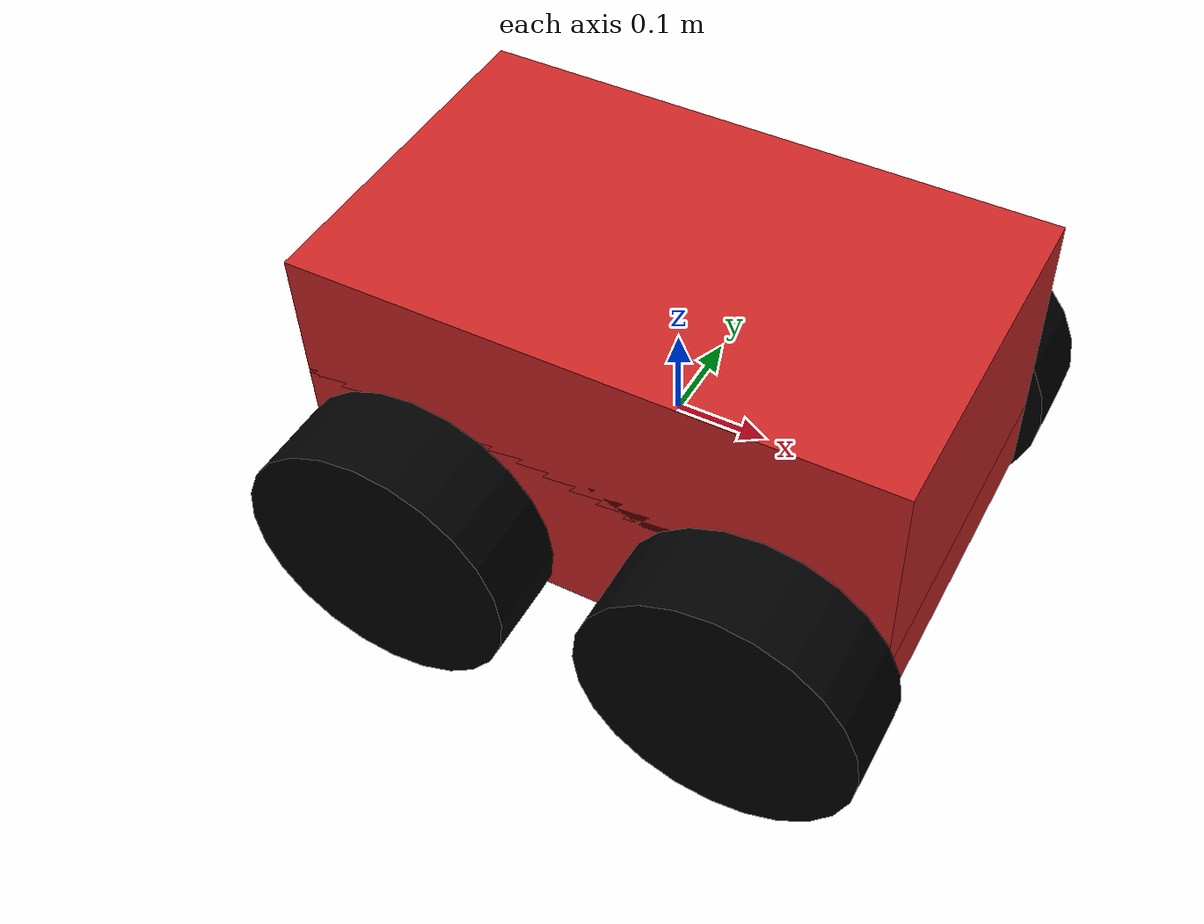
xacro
<?xml version="1.0"?>
<robot xmlns:xacro="http://ros.org/wiki/xacro" name="atrv">
	<xacro:property name="width" value=".39" />
	<xacro:property name="len" value=".64" />
	<xacro:property name="wradius" value=".15"/>
	<xacro:property name="wthick" value=".1"/>
	<link name="base_link">
		<visual>
			<geometry>
				<box size="${len} ${width} .22"/>
			</geometry>
		</visual>
		<collision>
			<geometry>
				<box size="${len} ${width} .22"/>
			</geometry>
		</collision>
		<inertial>
			<!-- Center of mass -->
			<mass value="16.523"/>
			 <!-- Moments of inertia: ( chassis without wheels ) -->
			 <inertia
			 	ixx="0.3136" ixy="-0.0008" ixz="0.0164"
			 	iyy="0.3922" iyz="-0.0009"
			 	izz="0.4485"/>
		</inertial>
	</link>

	<link name="top_cover">
		<visual>
			<geometry>
				<box size="${len} ${width} .25"/>
			</geometry>
		</visual>
		<collision>
			<geometry>
				<box size="${len} ${width} .25"/>
			</geometry>
		</collision>
	</link>

	<joint name="base_to_top_cover" type="fixed">
		<parent link="base_link"/>
		<child link="top_cover"/>
		<origin xyz="0 0 .1"/>
	</joint>

	<xacro:macro name="wheel" params="prefix fb lr">
		<!-- note front => fb = 1, left => lr = 1 -->
		<link name="${prefix}_wheel_link">
			<visual>
				<geometry>
					<cylinder length="${wthick}" radius="${wradius}"/>
				</geometry>
				<material name="black">
					<color rgba="0 0 0 1"/>
				</material>
			</visual>
			<collision>
				<geometry>
					<cylinder length="${wthick}" radius="${wradius}"/>
				</geometry>
			</collision>
			<inertial>
				<origin xyz="0 0 0" rpy="0 0 0"/>
				<mass value="0.477"/>
				<inertia
					ixx="0.0013" ixy="0" ixz="0"
					iyy="0.0024" iyz="0"
					izz="0.0013"/>
			</inertial>
		</link>

		<gazebo reference="${prefix}_wheel_link">
			<material>Gazebo/DarkGrey</material>
		</gazebo>

		<joint name="${prefix}_wheel" type="continuous">
			<parent link="base_link"/>
			<child link="${prefix}_wheel_link"/>
			<axis xyz="0 0 -1"/>
			<origin rpy="1.57075 0 0" xyz="${fb*.19} ${lr*.25} -.05" />
			<joint_properties damping="2.0" friction="{steer_joint_friction}"/>
		</joint>
		<transmission name="${prefix}_joint_wheel_steer_trans">
			<type>transmission_interface/SimpleTransmission</type>
			<joint name="${prefix}_wheel">
				<hardwareInterface>VelocityJointInterface</hardwareInterface>
			</joint>
			<actuator name="${prefix}_joint_wheel_steer_motor">
				<mechanicalReduction>1</mechanicalReduction>
			</actuator>
		</transmission>
	</xacro:macro>

	<xacro:wheel prefix="front_left" fb="1" lr="1" />
	<xacro:wheel prefix="front_right" fb="1" lr="-1" />
	<xacro:wheel prefix="rear_left" fb="-1" lr="1" />
	<xacro:wheel prefix="rear_right" fb="-1" lr="-1" />
	<!-- Bring in simulation data for Gazebo. -->
	<xacro:include filename="atrv.gazebo" />
</robot>
